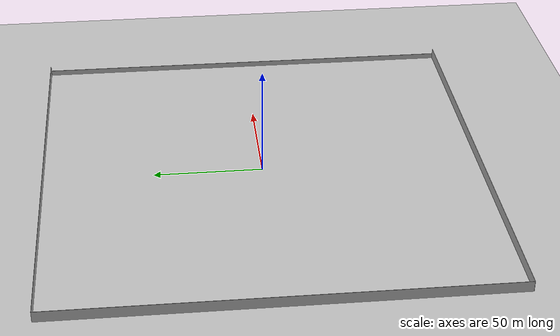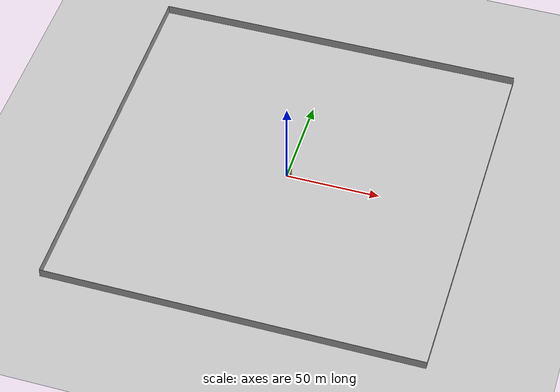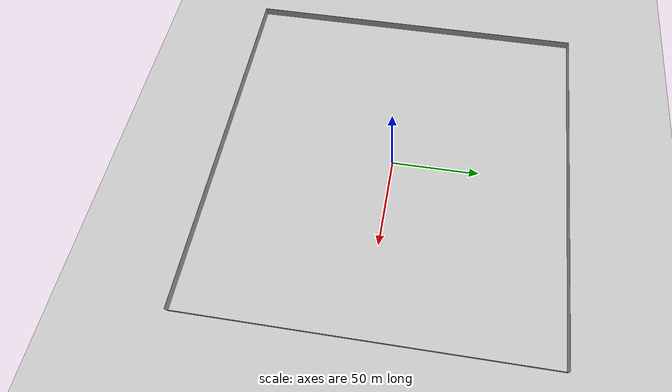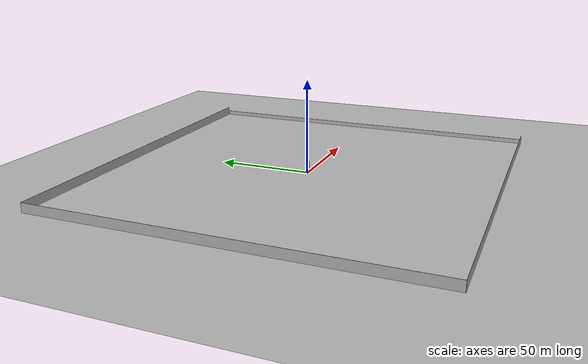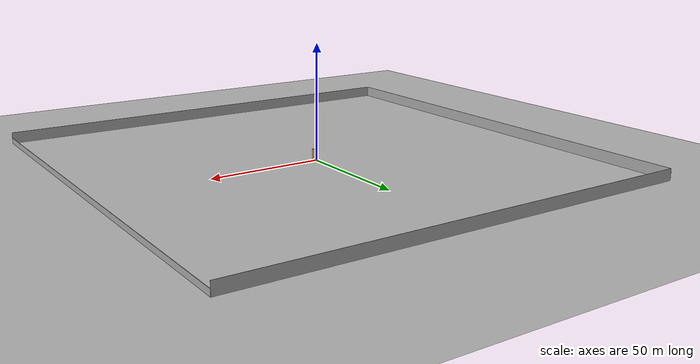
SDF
<sdf version="1.6">
 <world name="default">
  <model name="ground_plane">
   <static>1</static>
   <link name="link">
    <collision name="collision">
     <geometry><plane><normal>0 0 1</normal><size>100 100</size></plane></geometry>
     <surface><friction><ode><mu>100</mu><mu2>50</mu2></ode></friction></surface>
    </collision>
    <visual name="visual">
     <cast_shadows>0</cast_shadows>
     <geometry><plane><normal>0 0 1</normal><size>100 100</size></plane></geometry>
     <material>
      <script><uri>file://media/materials/scripts/gazebo.material</uri><name>Gazebo/Grey</name></script>
     </material>
    </visual>
   </link>
  </model>
  <model name="new_200">
   <link name="Wall_0">
    <pose>0 -100 0 0 -0 0</pose>
    <visual name="Wall_0_Visual">
     <pose>0 0 2.5 0 -0 0</pose>
     <geometry><box><size>200.15 0.15 5</size></box></geometry>
     <material>
      <script><uri>file://media/materials/scripts/gazebo.material</uri><name>Gazebo/Grey</name></script>
      <ambient>1 1 1 1</ambient>
     </material>
     <meta><layer>0</layer></meta>
    </visual>
    <collision name="Wall_0_Collision">
     <pose>0 0 2.5 0 -0 0</pose>
     <geometry><box><size>200.15 0.15 5</size></box></geometry>
     <surface>
      <friction>
       <ode><mu>1</mu><mu2>1</mu2><fdir1>0 0 0</fdir1><slip1>0</slip1><slip2>0</slip2></ode>
       <torsional>
        <coefficient>1</coefficient>
        <patch_radius>0</patch_radius>
        <surface_radius>0</surface_radius>
        <use_patch_radius>1</use_patch_radius>
        <ode><slip>0</slip></ode>
       </torsional>
      </friction>
      <bounce><restitution_coefficient>0</restitution_coefficient><threshold>1e+06</threshold></bounce>
      <contact>
       <collide_without_contact>0</collide_without_contact>
       <collide_without_contact_bitmask>1</collide_without_contact_bitmask>
       <collide_bitmask>1</collide_bitmask>
       <ode>
        <soft_cfm>0</soft_cfm>
        <soft_erp>0.2</soft_erp>
        <kp>1e+13</kp>
        <kd>1</kd>
        <max_vel>0.01</max_vel>
        <min_depth>0</min_depth>
       </ode>
       <bullet>
        <split_impulse>1</split_impulse>
        <split_impulse_penetration_threshold>-0.01</split_impulse_penetration_threshold>
        <soft_cfm>0</soft_cfm>
        <soft_erp>0.2</soft_erp>
        <kp>1e+13</kp>
        <kd>1</kd>
       </bullet>
      </contact>
     </surface>
    </collision>
   </link>
   <link name="Wall_2">
    <pose>-100 0 0 0 -0 1.5708</pose>
    <visual name="Wall_2_Visual">
     <pose>0 0 2.5 0 -0 0</pose>
     <geometry><box><size>200.15 0.15 5</size></box></geometry>
     <material>
      <script><uri>file://media/materials/scripts/gazebo.material</uri><name>Gazebo/Grey</name></script>
      <ambient>1 1 1 1</ambient>
     </material>
     <meta><layer>0</layer></meta>
    </visual>
    <collision name="Wall_2_Collision">
     <pose>0 0 2.5 0 -0 0</pose>
     <geometry><box><size>200.15 0.15 5</size></box></geometry>
     <surface>
      <friction>
       <ode><mu>1</mu><mu2>1</mu2><fdir1>0 0 0</fdir1><slip1>0</slip1><slip2>0</slip2></ode>
       <torsional>
        <coefficient>1</coefficient>
        <patch_radius>0</patch_radius>
        <surface_radius>0</surface_radius>
        <use_patch_radius>1</use_patch_radius>
        <ode><slip>0</slip></ode>
       </torsional>
      </friction>
      <bounce><restitution_coefficient>0</restitution_coefficient><threshold>1e+06</threshold></bounce>
      <contact>
       <collide_without_contact>0</collide_without_contact>
       <collide_without_contact_bitmask>1</collide_without_contact_bitmask>
       <collide_bitmask>1</collide_bitmask>
       <ode>
        <soft_cfm>0</soft_cfm>
        <soft_erp>0.2</soft_erp>
        <kp>1e+13</kp>
        <kd>1</kd>
        <max_vel>0.01</max_vel>
        <min_depth>0</min_depth>
       </ode>
       <bullet>
        <split_impulse>1</split_impulse>
        <split_impulse_penetration_threshold>-0.01</split_impulse_penetration_threshold>
        <soft_cfm>0</soft_cfm>
        <soft_erp>0.2</soft_erp>
        <kp>1e+13</kp>
        <kd>1</kd>
       </bullet>
      </contact>
     </surface>
    </collision>
   </link>
   <link name="Wall_4">
    <pose>0 100 0 0 -0 0</pose>
    <visual name="Wall_4_Visual">
     <pose>0 0 2.5 0 -0 0</pose>
     <geometry><box><size>200.15 0.15 5</size></box></geometry>
     <material>
      <script><uri>file://media/materials/scripts/gazebo.material</uri><name>Gazebo/Grey</name></script>
      <ambient>1 1 1 1</ambient>
     </material>
     <meta><layer>0</layer></meta>
    </visual>
    <collision name="Wall_4_Collision">
     <pose>0 0 2.5 0 -0 0</pose>
     <geometry><box><size>200.15 0.15 5</size></box></geometry>
     <surface>
      <friction>
       <ode><mu>1</mu><mu2>1</mu2><fdir1>0 0 0</fdir1><slip1>0</slip1><slip2>0</slip2></ode>
       <torsional>
        <coefficient>1</coefficient>
        <patch_radius>0</patch_radius>
        <surface_radius>0</surface_radius>
        <use_patch_radius>1</use_patch_radius>
        <ode><slip>0</slip></ode>
       </torsional>
      </friction>
      <bounce><restitution_coefficient>0</restitution_coefficient><threshold>1e+06</threshold></bounce>
      <contact>
       <collide_without_contact>0</collide_without_contact>
       <collide_without_contact_bitmask>1</collide_without_contact_bitmask>
       <collide_bitmask>1</collide_bitmask>
       <ode>
        <soft_cfm>0</soft_cfm>
        <soft_erp>0.2</soft_erp>
        <kp>1e+13</kp>
        <kd>1</kd>
        <max_vel>0.01</max_vel>
        <min_depth>0</min_depth>
       </ode>
       <bullet>
        <split_impulse>1</split_impulse>
        <split_impulse_penetration_threshold>-0.01</split_impulse_penetration_threshold>
        <soft_cfm>0</soft_cfm>
        <soft_erp>0.2</soft_erp>
        <kp>1e+13</kp>
        <kd>1</kd>
       </bullet>
      </contact>
     </surface>
    </collision>
   </link>
   <link name="Wall_6">
    <pose>100 0 0 0 -0 1.5708</pose>
    <visual name="Wall_6_Visual">
     <pose>0 0 1.25 0 -0 0</pose>
     <geometry><box><size>200.15 0.15 2.5</size></box></geometry>
     <material>
      <script><uri>file://media/materials/scripts/gazebo.material</uri><name>Gazebo/Grey</name></script>
      <ambient>1 1 1 1</ambient>
     </material>
     <meta><layer>0</layer></meta>
    </visual>
    <collision name="Wall_6_Collision">
     <pose>0 0 1.25 0 -0 0</pose>
     <geometry><box><size>200.15 0.15 2.5</size></box></geometry>
     <surface>
      <friction>
       <ode><mu>1</mu><mu2>1</mu2><fdir1>0 0 0</fdir1><slip1>0</slip1><slip2>0</slip2></ode>
       <torsional>
        <coefficient>1</coefficient>
        <patch_radius>0</patch_radius>
        <surface_radius>0</surface_radius>
        <use_patch_radius>1</use_patch_radius>
        <ode><slip>0</slip></ode>
       </torsional>
      </friction>
      <bounce><restitution_coefficient>0</restitution_coefficient><threshold>1e+06</threshold></bounce>
      <contact>
       <collide_without_contact>0</collide_without_contact>
       <collide_without_contact_bitmask>1</collide_without_contact_bitmask>
       <collide_bitmask>1</collide_bitmask>
       <ode>
        <soft_cfm>0</soft_cfm>
        <soft_erp>0.2</soft_erp>
        <kp>1e+13</kp>
        <kd>1</kd>
        <max_vel>0.01</max_vel>
        <min_depth>0</min_depth>
       </ode>
       <bullet>
        <split_impulse>1</split_impulse>
        <split_impulse_penetration_threshold>-0.01</split_impulse_penetration_threshold>
        <soft_cfm>0</soft_cfm>
        <soft_erp>0.2</soft_erp>
        <kp>1e+13</kp>
        <kd>1</kd>
       </bullet>
      </contact>
     </surface>
    </collision>
   </link>
   <static>1</static>
   <pose>-0.033076 0.009856 0 0 -0 0</pose>
  </model>
  <model name="WoodPillars_7">
   <link name="link_clone_31">
    <inertial>
     <mass>1</mass>
     <inertia><ixx>0.145833</ixx><ixy>0</ixy><ixz>0</ixz><iyy>0.145833</iyy><iyz>0</iyz><izz>0.125</izz></inertia>
    </inertial>
    <pose>-1.44135 19.9016 0 0 -0 -0.001289</pose>
    <visual name="visual">
     <geometry><cylinder><radius>0.5</radius><length>5.50507</length></cylinder></geometry>
     <material>
      <script><name>Gazebo/Wood</name><uri>file://media/materials/scripts/gazebo.material</uri></script>
      <shader type="pixel"/>
     </material>
    </visual>
    <collision name="collision">
     <geometry><cylinder><radius>0.5</radius><length>5.50507</length></cylinder></geometry>
     <surface>
      <friction>
       <ode><mu>1</mu><mu2>1</mu2><fdir1>0 0 0</fdir1><slip1>0</slip1><slip2>0</slip2></ode>
       <torsional>
        <coefficient>1</coefficient>
        <patch_radius>0</patch_radius>
        <surface_radius>0</surface_radius>
        <use_patch_radius>1</use_patch_radius>
        <ode><slip>0</slip></ode>
       </torsional>
      </friction>
      <bounce><restitution_coefficient>0</restitution_coefficient><threshold>1e+06</threshold></bounce>
      <contact>
       <collide_without_contact>0</collide_without_contact>
       <collide_without_contact_bitmask>1</collide_without_contact_bitmask>
       <collide_bitmask>1</collide_bitmask>
       <ode>
        <soft_cfm>0</soft_cfm>
        <soft_erp>0.2</soft_erp>
        <kp>1e+13</kp>
        <kd>1</kd>
        <max_vel>0.01</max_vel>
        <min_depth>0</min_depth>
       </ode>
       <bullet>
        <split_impulse>1</split_impulse>
        <split_impulse_penetration_threshold>-0.01</split_impulse_penetration_threshold>
        <soft_cfm>0</soft_cfm>
        <soft_erp>0.2</soft_erp>
        <kp>1e+13</kp>
        <kd>1</kd>
       </bullet>
      </contact>
     </surface>
    </collision>
   </link>
   <static>0</static>
   <pose>3.36685 -19.7312 2.75253 0 -0 0.001386</pose>
  </model>
 </world>
</sdf>
